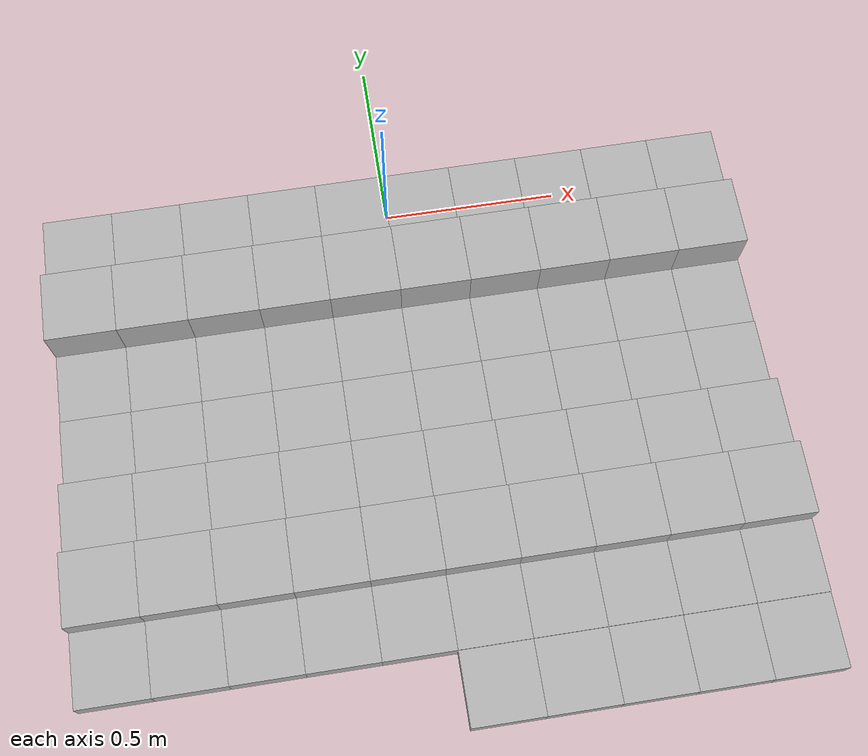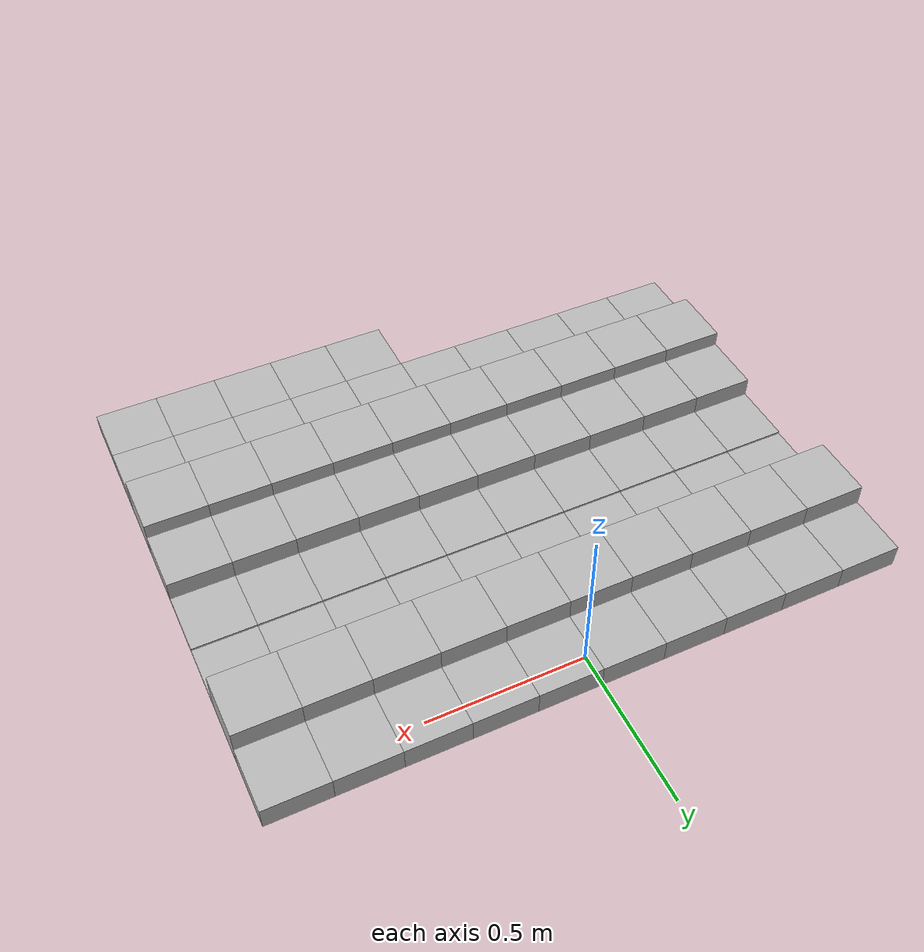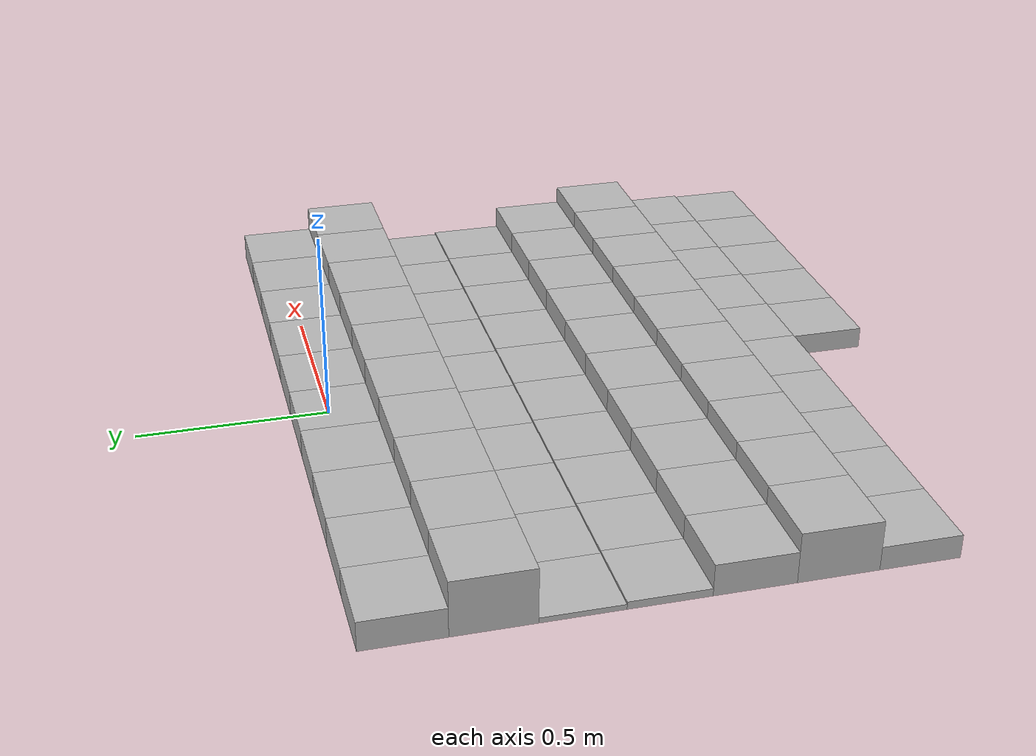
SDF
<sdf version="1.6">
 <model name="Terrain">
  <static>true</static>
  <link name="box_0_0">
   <pose>-0.9 0.0 0.0382685612016 0 0 0</pose>
   <inertial>
    <mass>1.0</mass>
    <inertia><ixx>0.0</ixx><ixy>0.0</ixy><ixz>0.0</ixz><iyy>0.0</iyy><iyz>0.0</iyz><izz>0.0</izz></inertia>
   </inertial>
   <collision name="collision"><geometry><box><size>0.2 0.2 0.0765371224031</size></box></geometry></collision>
   <visual name="visual"><geometry><box><size>0.2 0.2 0.0765371224031</size></box></geometry></visual>
  </link>
  <link name="box_0_1">
   <pose>-0.7 0.0 0.0382685612016 0 0 0</pose>
   <inertial>
    <mass>1.0</mass>
    <inertia><ixx>0.0</ixx><ixy>0.0</ixy><ixz>0.0</ixz><iyy>0.0</iyy><iyz>0.0</iyz><izz>0.0</izz></inertia>
   </inertial>
   <collision name="collision"><geometry><box><size>0.2 0.2 0.0765371224031</size></box></geometry></collision>
   <visual name="visual"><geometry><box><size>0.2 0.2 0.0765371224031</size></box></geometry></visual>
  </link>
  <link name="box_0_2">
   <pose>-0.5 0.0 0.0382685612016 0 0 0</pose>
   <inertial>
    <mass>1.0</mass>
    <inertia><ixx>0.0</ixx><ixy>0.0</ixy><ixz>0.0</ixz><iyy>0.0</iyy><iyz>0.0</iyz><izz>0.0</izz></inertia>
   </inertial>
   <collision name="collision"><geometry><box><size>0.2 0.2 0.0765371224031</size></box></geometry></collision>
   <visual name="visual"><geometry><box><size>0.2 0.2 0.0765371224031</size></box></geometry></visual>
  </link>
  <link name="box_0_3">
   <pose>-0.3 0.0 0.0382685612016 0 0 0</pose>
   <inertial>
    <mass>1.0</mass>
    <inertia><ixx>0.0</ixx><ixy>0.0</ixy><ixz>0.0</ixz><iyy>0.0</iyy><iyz>0.0</iyz><izz>0.0</izz></inertia>
   </inertial>
   <collision name="collision"><geometry><box><size>0.2 0.2 0.0765371224031</size></box></geometry></collision>
   <visual name="visual"><geometry><box><size>0.2 0.2 0.0765371224031</size></box></geometry></visual>
  </link>
  <link name="box_0_4">
   <pose>-0.1 0.0 0.0382685612016 0 0 0</pose>
   <inertial>
    <mass>1.0</mass>
    <inertia><ixx>0.0</ixx><ixy>0.0</ixy><ixz>0.0</ixz><iyy>0.0</iyy><iyz>0.0</iyz><izz>0.0</izz></inertia>
   </inertial>
   <collision name="collision"><geometry><box><size>0.2 0.2 0.0765371224031</size></box></geometry></collision>
   <visual name="visual"><geometry><box><size>0.2 0.2 0.0765371224031</size></box></geometry></visual>
  </link>
  <link name="box_0_5">
   <pose>0.1 0.0 0.0382685612016 0 0 0</pose>
   <inertial>
    <mass>1.0</mass>
    <inertia><ixx>0.0</ixx><ixy>0.0</ixy><ixz>0.0</ixz><iyy>0.0</iyy><iyz>0.0</iyz><izz>0.0</izz></inertia>
   </inertial>
   <collision name="collision"><geometry><box><size>0.2 0.2 0.0765371224031</size></box></geometry></collision>
   <visual name="visual"><geometry><box><size>0.2 0.2 0.0765371224031</size></box></geometry></visual>
  </link>
  <link name="box_0_6">
   <pose>0.3 0.0 0.0382685612016 0 0 0</pose>
   <inertial>
    <mass>1.0</mass>
    <inertia><ixx>0.0</ixx><ixy>0.0</ixy><ixz>0.0</ixz><iyy>0.0</iyy><iyz>0.0</iyz><izz>0.0</izz></inertia>
   </inertial>
   <collision name="collision"><geometry><box><size>0.2 0.2 0.0765371224031</size></box></geometry></collision>
   <visual name="visual"><geometry><box><size>0.2 0.2 0.0765371224031</size></box></geometry></visual>
  </link>
  <link name="box_0_7">
   <pose>0.5 0.0 0.0382685612016 0 0 0</pose>
   <inertial>
    <mass>1.0</mass>
    <inertia><ixx>0.0</ixx><ixy>0.0</ixy><ixz>0.0</ixz><iyy>0.0</iyy><iyz>0.0</iyz><izz>0.0</izz></inertia>
   </inertial>
   <collision name="collision"><geometry><box><size>0.2 0.2 0.0765371224031</size></box></geometry></collision>
   <visual name="visual"><geometry><box><size>0.2 0.2 0.0765371224031</size></box></geometry></visual>
  </link>
  <link name="box_0_8">
   <pose>0.7 0.0 0.0382685612016 0 0 0</pose>
   <inertial>
    <mass>1.0</mass>
    <inertia><ixx>0.0</ixx><ixy>0.0</ixy><ixz>0.0</ixz><iyy>0.0</iyy><iyz>0.0</iyz><izz>0.0</izz></inertia>
   </inertial>
   <collision name="collision"><geometry><box><size>0.2 0.2 0.0765371224031</size></box></geometry></collision>
   <visual name="visual"><geometry><box><size>0.2 0.2 0.0765371224031</size></box></geometry></visual>
  </link>
  <link name="box_0_9">
   <pose>0.9 0.0 0.0382685612016 0 0 0</pose>
   <inertial>
    <mass>1.0</mass>
    <inertia><ixx>0.0</ixx><ixy>0.0</ixy><ixz>0.0</ixz><iyy>0.0</iyy><iyz>0.0</iyz><izz>0.0</izz></inertia>
   </inertial>
   <collision name="collision"><geometry><box><size>0.2 0.2 0.0765371224031</size></box></geometry></collision>
   <visual name="visual"><geometry><box><size>0.2 0.2 0.0765371224031</size></box></geometry></visual>
  </link>
  <link name="box_1_0">
   <pose>-0.9 -0.2 0.0724811908394 0 0 0</pose>
   <inertial>
    <mass>1.0</mass>
    <inertia><ixx>0.0</ixx><ixy>0.0</ixy><ixz>0.0</ixz><iyy>0.0</iyy><iyz>0.0</iyz><izz>0.0</izz></inertia>
   </inertial>
   <collision name="collision"><geometry><box><size>0.2 0.2 0.144962381679</size></box></geometry></collision>
   <visual name="visual"><geometry><box><size>0.2 0.2 0.144962381679</size></box></geometry></visual>
  </link>
  <link name="box_1_1">
   <pose>-0.7 -0.2 0.0724811908394 0 0 0</pose>
   <inertial>
    <mass>1.0</mass>
    <inertia><ixx>0.0</ixx><ixy>0.0</ixy><ixz>0.0</ixz><iyy>0.0</iyy><iyz>0.0</iyz><izz>0.0</izz></inertia>
   </inertial>
   <collision name="collision"><geometry><box><size>0.2 0.2 0.144962381679</size></box></geometry></collision>
   <visual name="visual"><geometry><box><size>0.2 0.2 0.144962381679</size></box></geometry></visual>
  </link>
  <link name="box_1_2">
   <pose>-0.5 -0.2 0.0724811908394 0 0 0</pose>
   <inertial>
    <mass>1.0</mass>
    <inertia><ixx>0.0</ixx><ixy>0.0</ixy><ixz>0.0</ixz><iyy>0.0</iyy><iyz>0.0</iyz><izz>0.0</izz></inertia>
   </inertial>
   <collision name="collision"><geometry><box><size>0.2 0.2 0.144962381679</size></box></geometry></collision>
   <visual name="visual"><geometry><box><size>0.2 0.2 0.144962381679</size></box></geometry></visual>
  </link>
  <link name="box_1_3">
   <pose>-0.3 -0.2 0.0724811908394 0 0 0</pose>
   <inertial>
    <mass>1.0</mass>
    <inertia><ixx>0.0</ixx><ixy>0.0</ixy><ixz>0.0</ixz><iyy>0.0</iyy><iyz>0.0</iyz><izz>0.0</izz></inertia>
   </inertial>
   <collision name="collision"><geometry><box><size>0.2 0.2 0.144962381679</size></box></geometry></collision>
   <visual name="visual"><geometry><box><size>0.2 0.2 0.144962381679</size></box></geometry></visual>
  </link>
  <link name="box_1_4">
   <pose>-0.1 -0.2 0.0724811908394 0 0 0</pose>
   <inertial>
    <mass>1.0</mass>
    <inertia><ixx>0.0</ixx><ixy>0.0</ixy><ixz>0.0</ixz><iyy>0.0</iyy><iyz>0.0</iyz><izz>0.0</izz></inertia>
   </inertial>
   <collision name="collision"><geometry><box><size>0.2 0.2 0.144962381679</size></box></geometry></collision>
   <visual name="visual"><geometry><box><size>0.2 0.2 0.144962381679</size></box></geometry></visual>
  </link>
  <link name="box_1_5">
   <pose>0.1 -0.2 0.0724811908394 0 0 0</pose>
   <inertial>
    <mass>1.0</mass>
    <inertia><ixx>0.0</ixx><ixy>0.0</ixy><ixz>0.0</ixz><iyy>0.0</iyy><iyz>0.0</iyz><izz>0.0</izz></inertia>
   </inertial>
   <collision name="collision"><geometry><box><size>0.2 0.2 0.144962381679</size></box></geometry></collision>
   <visual name="visual"><geometry><box><size>0.2 0.2 0.144962381679</size></box></geometry></visual>
  </link>
  <link name="box_1_6">
   <pose>0.3 -0.2 0.0724811908394 0 0 0</pose>
   <inertial>
    <mass>1.0</mass>
    <inertia><ixx>0.0</ixx><ixy>0.0</ixy><ixz>0.0</ixz><iyy>0.0</iyy><iyz>0.0</iyz><izz>0.0</izz></inertia>
   </inertial>
   <collision name="collision"><geometry><box><size>0.2 0.2 0.144962381679</size></box></geometry></collision>
   <visual name="visual"><geometry><box><size>0.2 0.2 0.144962381679</size></box></geometry></visual>
  </link>
  <link name="box_1_7">
   <pose>0.5 -0.2 0.0724811908394 0 0 0</pose>
   <inertial>
    <mass>1.0</mass>
    <inertia><ixx>0.0</ixx><ixy>0.0</ixy><ixz>0.0</ixz><iyy>0.0</iyy><iyz>0.0</iyz><izz>0.0</izz></inertia>
   </inertial>
   <collision name="collision"><geometry><box><size>0.2 0.2 0.144962381679</size></box></geometry></collision>
   <visual name="visual"><geometry><box><size>0.2 0.2 0.144962381679</size></box></geometry></visual>
  </link>
  <link name="box_1_8">
   <pose>0.7 -0.2 0.0724811908394 0 0 0</pose>
   <inertial>
    <mass>1.0</mass>
    <inertia><ixx>0.0</ixx><ixy>0.0</ixy><ixz>0.0</ixz><iyy>0.0</iyy><iyz>0.0</iyz><izz>0.0</izz></inertia>
   </inertial>
   <collision name="collision"><geometry><box><size>0.2 0.2 0.144962381679</size></box></geometry></collision>
   <visual name="visual"><geometry><box><size>0.2 0.2 0.144962381679</size></box></geometry></visual>
  </link>
  <link name="box_1_9">
   <pose>0.9 -0.2 0.0724811908394 0 0 0</pose>
   <inertial>
    <mass>1.0</mass>
    <inertia><ixx>0.0</ixx><ixy>0.0</ixy><ixz>0.0</ixz><iyy>0.0</iyy><iyz>0.0</iyz><izz>0.0</izz></inertia>
   </inertial>
   <collision name="collision"><geometry><box><size>0.2 0.2 0.144962381679</size></box></geometry></collision>
   <visual name="visual"><geometry><box><size>0.2 0.2 0.144962381679</size></box></geometry></visual>
  </link>
  <link name="box_2_0">
   <pose>-0.9 -0.4 0.00683379115934 0 0 0</pose>
   <inertial>
    <mass>1.0</mass>
    <inertia><ixx>0.0</ixx><ixy>0.0</ixy><ixz>0.0</ixz><iyy>0.0</iyy><iyz>0.0</iyz><izz>0.0</izz></inertia>
   </inertial>
   <collision name="collision"><geometry><box><size>0.2 0.2 0.0136675823187</size></box></geometry></collision>
   <visual name="visual"><geometry><box><size>0.2 0.2 0.0136675823187</size></box></geometry></visual>
  </link>
  <link name="box_2_1">
   <pose>-0.7 -0.4 0.00683379115934 0 0 0</pose>
   <inertial>
    <mass>1.0</mass>
    <inertia><ixx>0.0</ixx><ixy>0.0</ixy><ixz>0.0</ixz><iyy>0.0</iyy><iyz>0.0</iyz><izz>0.0</izz></inertia>
   </inertial>
   <collision name="collision"><geometry><box><size>0.2 0.2 0.0136675823187</size></box></geometry></collision>
   <visual name="visual"><geometry><box><size>0.2 0.2 0.0136675823187</size></box></geometry></visual>
  </link>
  <link name="box_2_2">
   <pose>-0.5 -0.4 0.00683379115934 0 0 0</pose>
   <inertial>
    <mass>1.0</mass>
    <inertia><ixx>0.0</ixx><ixy>0.0</ixy><ixz>0.0</ixz><iyy>0.0</iyy><iyz>0.0</iyz><izz>0.0</izz></inertia>
   </inertial>
   <collision name="collision"><geometry><box><size>0.2 0.2 0.0136675823187</size></box></geometry></collision>
   <visual name="visual"><geometry><box><size>0.2 0.2 0.0136675823187</size></box></geometry></visual>
  </link>
  <link name="box_2_3">
   <pose>-0.3 -0.4 0.00683379115934 0 0 0</pose>
   <inertial>
    <mass>1.0</mass>
    <inertia><ixx>0.0</ixx><ixy>0.0</ixy><ixz>0.0</ixz><iyy>0.0</iyy><iyz>0.0</iyz><izz>0.0</izz></inertia>
   </inertial>
   <collision name="collision"><geometry><box><size>0.2 0.2 0.0136675823187</size></box></geometry></collision>
   <visual name="visual"><geometry><box><size>0.2 0.2 0.0136675823187</size></box></geometry></visual>
  </link>
  <link name="box_2_4">
   <pose>-0.1 -0.4 0.00683379115934 0 0 0</pose>
   <inertial>
    <mass>1.0</mass>
    <inertia><ixx>0.0</ixx><ixy>0.0</ixy><ixz>0.0</ixz><iyy>0.0</iyy><iyz>0.0</iyz><izz>0.0</izz></inertia>
   </inertial>
   <collision name="collision"><geometry><box><size>0.2 0.2 0.0136675823187</size></box></geometry></collision>
   <visual name="visual"><geometry><box><size>0.2 0.2 0.0136675823187</size></box></geometry></visual>
  </link>
  <link name="box_2_5">
   <pose>0.1 -0.4 0.00683379115934 0 0 0</pose>
   <inertial>
    <mass>1.0</mass>
    <inertia><ixx>0.0</ixx><ixy>0.0</ixy><ixz>0.0</ixz><iyy>0.0</iyy><iyz>0.0</iyz><izz>0.0</izz></inertia>
   </inertial>
   <collision name="collision"><geometry><box><size>0.2 0.2 0.0136675823187</size></box></geometry></collision>
   <visual name="visual"><geometry><box><size>0.2 0.2 0.0136675823187</size></box></geometry></visual>
  </link>
  <link name="box_2_6">
   <pose>0.3 -0.4 0.00683379115934 0 0 0</pose>
   <inertial>
    <mass>1.0</mass>
    <inertia><ixx>0.0</ixx><ixy>0.0</ixy><ixz>0.0</ixz><iyy>0.0</iyy><iyz>0.0</iyz><izz>0.0</izz></inertia>
   </inertial>
   <collision name="collision"><geometry><box><size>0.2 0.2 0.0136675823187</size></box></geometry></collision>
   <visual name="visual"><geometry><box><size>0.2 0.2 0.0136675823187</size></box></geometry></visual>
  </link>
  <link name="box_2_7">
   <pose>0.5 -0.4 0.00683379115934 0 0 0</pose>
   <inertial>
    <mass>1.0</mass>
    <inertia><ixx>0.0</ixx><ixy>0.0</ixy><ixz>0.0</ixz><iyy>0.0</iyy><iyz>0.0</iyz><izz>0.0</izz></inertia>
   </inertial>
   <collision name="collision"><geometry><box><size>0.2 0.2 0.0136675823187</size></box></geometry></collision>
   <visual name="visual"><geometry><box><size>0.2 0.2 0.0136675823187</size></box></geometry></visual>
  </link>
  <link name="box_2_8">
   <pose>0.7 -0.4 0.00683379115934 0 0 0</pose>
   <inertial>
    <mass>1.0</mass>
    <inertia><ixx>0.0</ixx><ixy>0.0</ixy><ixz>0.0</ixz><iyy>0.0</iyy><iyz>0.0</iyz><izz>0.0</izz></inertia>
   </inertial>
   <collision name="collision"><geometry><box><size>0.2 0.2 0.0136675823187</size></box></geometry></collision>
   <visual name="visual"><geometry><box><size>0.2 0.2 0.0136675823187</size></box></geometry></visual>
  </link>
  <link name="box_2_9">
   <pose>0.9 -0.4 0.00683379115934 0 0 0</pose>
   <inertial>
    <mass>1.0</mass>
    <inertia><ixx>0.0</ixx><ixy>0.0</ixy><ixz>0.0</ixz><iyy>0.0</iyy><iyz>0.0</iyz><izz>0.0</izz></inertia>
   </inertial>
   <collision name="collision"><geometry><box><size>0.2 0.2 0.0136675823187</size></box></geometry></collision>
   <visual name="visual"><geometry><box><size>0.2 0.2 0.0136675823187</size></box></geometry></visual>
  </link>
  <link name="box_3_0">
   <pose>-0.9 -0.6 0.00997603612215 0 0 0</pose>
   <inertial>
    <mass>1.0</mass>
    <inertia><ixx>0.0</ixx><ixy>0.0</ixy><ixz>0.0</ixz><iyy>0.0</iyy><iyz>0.0</iyz><izz>0.0</izz></inertia>
   </inertial>
   <collision name="collision"><geometry><box><size>0.2 0.2 0.0199520722443</size></box></geometry></collision>
   <visual name="visual"><geometry><box><size>0.2 0.2 0.0199520722443</size></box></geometry></visual>
  </link>
  <link name="box_3_1">
   <pose>-0.7 -0.6 0.00997603612215 0 0 0</pose>
   <inertial>
    <mass>1.0</mass>
    <inertia><ixx>0.0</ixx><ixy>0.0</ixy><ixz>0.0</ixz><iyy>0.0</iyy><iyz>0.0</iyz><izz>0.0</izz></inertia>
   </inertial>
   <collision name="collision"><geometry><box><size>0.2 0.2 0.0199520722443</size></box></geometry></collision>
   <visual name="visual"><geometry><box><size>0.2 0.2 0.0199520722443</size></box></geometry></visual>
  </link>
  <link name="box_3_2">
   <pose>-0.5 -0.6 0.00997603612215 0 0 0</pose>
   <inertial>
    <mass>1.0</mass>
    <inertia><ixx>0.0</ixx><ixy>0.0</ixy><ixz>0.0</ixz><iyy>0.0</iyy><iyz>0.0</iyz><izz>0.0</izz></inertia>
   </inertial>
   <collision name="collision"><geometry><box><size>0.2 0.2 0.0199520722443</size></box></geometry></collision>
   <visual name="visual"><geometry><box><size>0.2 0.2 0.0199520722443</size></box></geometry></visual>
  </link>
  <link name="box_3_3">
   <pose>-0.3 -0.6 0.00997603612215 0 0 0</pose>
   <inertial>
    <mass>1.0</mass>
    <inertia><ixx>0.0</ixx><ixy>0.0</ixy><ixz>0.0</ixz><iyy>0.0</iyy><iyz>0.0</iyz><izz>0.0</izz></inertia>
   </inertial>
   <collision name="collision"><geometry><box><size>0.2 0.2 0.0199520722443</size></box></geometry></collision>
   <visual name="visual"><geometry><box><size>0.2 0.2 0.0199520722443</size></box></geometry></visual>
  </link>
  <link name="box_3_4">
   <pose>-0.1 -0.6 0.00997603612215 0 0 0</pose>
   <inertial>
    <mass>1.0</mass>
    <inertia><ixx>0.0</ixx><ixy>0.0</ixy><ixz>0.0</ixz><iyy>0.0</iyy><iyz>0.0</iyz><izz>0.0</izz></inertia>
   </inertial>
   <collision name="collision"><geometry><box><size>0.2 0.2 0.0199520722443</size></box></geometry></collision>
   <visual name="visual"><geometry><box><size>0.2 0.2 0.0199520722443</size></box></geometry></visual>
  </link>
  <link name="box_3_5">
   <pose>0.1 -0.6 0.00997603612215 0 0 0</pose>
   <inertial>
    <mass>1.0</mass>
    <inertia><ixx>0.0</ixx><ixy>0.0</ixy><ixz>0.0</ixz><iyy>0.0</iyy><iyz>0.0</iyz><izz>0.0</izz></inertia>
   </inertial>
   <collision name="collision"><geometry><box><size>0.2 0.2 0.0199520722443</size></box></geometry></collision>
   <visual name="visual"><geometry><box><size>0.2 0.2 0.0199520722443</size></box></geometry></visual>
  </link>
  <link name="box_3_6">
   <pose>0.3 -0.6 0.00997603612215 0 0 0</pose>
   <inertial>
    <mass>1.0</mass>
    <inertia><ixx>0.0</ixx><ixy>0.0</ixy><ixz>0.0</ixz><iyy>0.0</iyy><iyz>0.0</iyz><izz>0.0</izz></inertia>
   </inertial>
   <collision name="collision"><geometry><box><size>0.2 0.2 0.0199520722443</size></box></geometry></collision>
   <visual name="visual"><geometry><box><size>0.2 0.2 0.0199520722443</size></box></geometry></visual>
  </link>
  <link name="box_3_7">
   <pose>0.5 -0.6 0.00997603612215 0 0 0</pose>
   <inertial>
    <mass>1.0</mass>
    <inertia><ixx>0.0</ixx><ixy>0.0</ixy><ixz>0.0</ixz><iyy>0.0</iyy><iyz>0.0</iyz><izz>0.0</izz></inertia>
   </inertial>
   <collision name="collision"><geometry><box><size>0.2 0.2 0.0199520722443</size></box></geometry></collision>
   <visual name="visual"><geometry><box><size>0.2 0.2 0.0199520722443</size></box></geometry></visual>
  </link>
  <link name="box_3_8">
   <pose>0.7 -0.6 0.00997603612215 0 0 0</pose>
   <inertial>
    <mass>1.0</mass>
    <inertia><ixx>0.0</ixx><ixy>0.0</ixy><ixz>0.0</ixz><iyy>0.0</iyy><iyz>0.0</iyz><izz>0.0</izz></inertia>
   </inertial>
   <collision name="collision"><geometry><box><size>0.2 0.2 0.0199520722443</size></box></geometry></collision>
   <visual name="visual"><geometry><box><size>0.2 0.2 0.0199520722443</size></box></geometry></visual>
  </link>
  <link name="box_3_9">
   <pose>0.9 -0.6 0.00997603612215 0 0 0</pose>
   <inertial>
    <mass>1.0</mass>
    <inertia><ixx>0.0</ixx><ixy>0.0</ixy><ixz>0.0</ixz><iyy>0.0</iyy><iyz>0.0</iyz><izz>0.0</izz></inertia>
   </inertial>
   <collision name="collision"><geometry><box><size>0.2 0.2 0.0199520722443</size></box></geometry></collision>
   <visual name="visual"><geometry><box><size>0.2 0.2 0.0199520722443</size></box></geometry></visual>
  </link>
  <link name="box_4_0">
   <pose>-0.9 -0.8 0.041525489958 0 0 0</pose>
   <inertial>
    <mass>1.0</mass>
    <inertia><ixx>0.0</ixx><ixy>0.0</ixy><ixz>0.0</ixz><iyy>0.0</iyy><iyz>0.0</iyz><izz>0.0</izz></inertia>
   </inertial>
   <collision name="collision"><geometry><box><size>0.2 0.2 0.0830509799161</size></box></geometry></collision>
   <visual name="visual"><geometry><box><size>0.2 0.2 0.0830509799161</size></box></geometry></visual>
  </link>
  <link name="box_4_1">
   <pose>-0.7 -0.8 0.041525489958 0 0 0</pose>
   <inertial>
    <mass>1.0</mass>
    <inertia><ixx>0.0</ixx><ixy>0.0</ixy><ixz>0.0</ixz><iyy>0.0</iyy><iyz>0.0</iyz><izz>0.0</izz></inertia>
   </inertial>
   <collision name="collision"><geometry><box><size>0.2 0.2 0.0830509799161</size></box></geometry></collision>
   <visual name="visual"><geometry><box><size>0.2 0.2 0.0830509799161</size></box></geometry></visual>
  </link>
  <link name="box_4_2">
   <pose>-0.5 -0.8 0.041525489958 0 0 0</pose>
   <inertial>
    <mass>1.0</mass>
    <inertia><ixx>0.0</ixx><ixy>0.0</ixy><ixz>0.0</ixz><iyy>0.0</iyy><iyz>0.0</iyz><izz>0.0</izz></inertia>
   </inertial>
   <collision name="collision"><geometry><box><size>0.2 0.2 0.0830509799161</size></box></geometry></collision>
   <visual name="visual"><geometry><box><size>0.2 0.2 0.0830509799161</size></box></geometry></visual>
  </link>
  <link name="box_4_3">
   <pose>-0.3 -0.8 0.041525489958 0 0 0</pose>
   <inertial>
    <mass>1.0</mass>
    <inertia><ixx>0.0</ixx><ixy>0.0</ixy><ixz>0.0</ixz><iyy>0.0</iyy><iyz>0.0</iyz><izz>0.0</izz></inertia>
   </inertial>
   <collision name="collision"><geometry><box><size>0.2 0.2 0.0830509799161</size></box></geometry></collision>
   <visual name="visual"><geometry><box><size>0.2 0.2 0.0830509799161</size></box></geometry></visual>
  </link>
  <link name="box_4_4">
   <pose>-0.1 -0.8 0.041525489958 0 0 0</pose>
   <inertial>
    <mass>1.0</mass>
    <inertia><ixx>0.0</ixx><ixy>0.0</ixy><ixz>0.0</ixz><iyy>0.0</iyy><iyz>0.0</iyz><izz>0.0</izz></inertia>
   </inertial>
   <collision name="collision"><geometry><box><size>0.2 0.2 0.0830509799161</size></box></geometry></collision>
   <visual name="visual"><geometry><box><size>0.2 0.2 0.0830509799161</size></box></geometry></visual>
  </link>
  <link name="box_4_5">
   <pose>0.1 -0.8 0.041525489958 0 0 0</pose>
   <inertial>
    <mass>1.0</mass>
    <inertia><ixx>0.0</ixx><ixy>0.0</ixy><ixz>0.0</ixz><iyy>0.0</iyy><iyz>0.0</iyz><izz>0.0</izz></inertia>
   </inertial>
   <collision name="collision"><geometry><box><size>0.2 0.2 0.0830509799161</size></box></geometry></collision>
   <visual name="visual"><geometry><box><size>0.2 0.2 0.0830509799161</size></box></geometry></visual>
  </link>
  <link name="box_4_6">
   <pose>0.3 -0.8 0.041525489958 0 0 0</pose>
   <inertial>
    <mass>1.0</mass>
    <inertia><ixx>0.0</ixx><ixy>0.0</ixy><ixz>0.0</ixz><iyy>0.0</iyy><iyz>0.0</iyz><izz>0.0</izz></inertia>
   </inertial>
   <collision name="collision"><geometry><box><size>0.2 0.2 0.0830509799161</size></box></geometry></collision>
   <visual name="visual"><geometry><box><size>0.2 0.2 0.0830509799161</size></box></geometry></visual>
  </link>
  <link name="box_4_7">
   <pose>0.5 -0.8 0.041525489958 0 0 0</pose>
   <inertial>
    <mass>1.0</mass>
    <inertia><ixx>0.0</ixx><ixy>0.0</ixy><ixz>0.0</ixz><iyy>0.0</iyy><iyz>0.0</iyz><izz>0.0</izz></inertia>
   </inertial>
   <collision name="collision"><geometry><box><size>0.2 0.2 0.0830509799161</size></box></geometry></collision>
   <visual name="visual"><geometry><box><size>0.2 0.2 0.0830509799161</size></box></geometry></visual>
  </link>
  <link name="box_4_8">
   <pose>0.7 -0.8 0.041525489958 0 0 0</pose>
   <inertial>
    <mass>1.0</mass>
    <inertia><ixx>0.0</ixx><ixy>0.0</ixy><ixz>0.0</ixz><iyy>0.0</iyy><iyz>0.0</iyz><izz>0.0</izz></inertia>
   </inertial>
   <collision name="collision"><geometry><box><size>0.2 0.2 0.0830509799161</size></box></geometry></collision>
   <visual name="visual"><geometry><box><size>0.2 0.2 0.0830509799161</size></box></geometry></visual>
  </link>
  <link name="box_4_9">
   <pose>0.9 -0.8 0.041525489958 0 0 0</pose>
   <inertial>
    <mass>1.0</mass>
    <inertia><ixx>0.0</ixx><ixy>0.0</ixy><ixz>0.0</ixz><iyy>0.0</iyy><iyz>0.0</iyz><izz>0.0</izz></inertia>
   </inertial>
   <collision name="collision"><geometry><box><size>0.2 0.2 0.0830509799161</size></box></geometry></collision>
   <visual name="visual"><geometry><box><size>0.2 0.2 0.0830509799161</size></box></geometry></visual>
  </link>
  <link name="box_5_0">
   <pose>-0.9 -1.0 0.0661127829623 0 0 0</pose>
   <inertial>
    <mass>1.0</mass>
    <inertia><ixx>0.0</ixx><ixy>0.0</ixy><ixz>0.0</ixz><iyy>0.0</iyy><iyz>0.0</iyz><izz>0.0</izz></inertia>
   </inertial>
   <collision name="collision"><geometry><box><size>0.2 0.2 0.132225565925</size></box></geometry></collision>
   <visual name="visual"><geometry><box><size>0.2 0.2 0.132225565925</size></box></geometry></visual>
  </link>
  <link name="box_5_1">
   <pose>-0.7 -1.0 0.0661127829623 0 0 0</pose>
   <inertial>
    <mass>1.0</mass>
    <inertia><ixx>0.0</ixx><ixy>0.0</ixy><ixz>0.0</ixz><iyy>0.0</iyy><iyz>0.0</iyz><izz>0.0</izz></inertia>
   </inertial>
   <collision name="collision"><geometry><box><size>0.2 0.2 0.132225565925</size></box></geometry></collision>
   <visual name="visual"><geometry><box><size>0.2 0.2 0.132225565925</size></box></geometry></visual>
  </link>
  <link name="box_5_2">
   <pose>-0.5 -1.0 0.0661127829623 0 0 0</pose>
   <inertial>
    <mass>1.0</mass>
    <inertia><ixx>0.0</ixx><ixy>0.0</ixy><ixz>0.0</ixz><iyy>0.0</iyy><iyz>0.0</iyz><izz>0.0</izz></inertia>
   </inertial>
   <collision name="collision"><geometry><box><size>0.2 0.2 0.132225565925</size></box></geometry></collision>
   <visual name="visual"><geometry><box><size>0.2 0.2 0.132225565925</size></box></geometry></visual>
  </link>
  <link name="box_5_3">
   <pose>-0.3 -1.0 0.0661127829623 0 0 0</pose>
   <inertial>
    <mass>1.0</mass>
    <inertia><ixx>0.0</ixx><ixy>0.0</ixy><ixz>0.0</ixz><iyy>0.0</iyy><iyz>0.0</iyz><izz>0.0</izz></inertia>
   </inertial>
   <collision name="collision"><geometry><box><size>0.2 0.2 0.132225565925</size></box></geometry></collision>
   <visual name="visual"><geometry><box><size>0.2 0.2 0.132225565925</size></box></geometry></visual>
  </link>
  <link name="box_5_4">
   <pose>-0.1 -1.0 0.0661127829623 0 0 0</pose>
   <inertial>
    <mass>1.0</mass>
    <inertia><ixx>0.0</ixx><ixy>0.0</ixy><ixz>0.0</ixz><iyy>0.0</iyy><iyz>0.0</iyz><izz>0.0</izz></inertia>
   </inertial>
   <collision name="collision"><geometry><box><size>0.2 0.2 0.132225565925</size></box></geometry></collision>
   <visual name="visual"><geometry><box><size>0.2 0.2 0.132225565925</size></box></geometry></visual>
  </link>
  <link name="box_5_5">
   <pose>0.1 -1.0 0.0661127829623 0 0 0</pose>
   <inertial>
    <mass>1.0</mass>
    <inertia><ixx>0.0</ixx><ixy>0.0</ixy><ixz>0.0</ixz><iyy>0.0</iyy><iyz>0.0</iyz><izz>0.0</izz></inertia>
   </inertial>
   <collision name="collision"><geometry><box><size>0.2 0.2 0.132225565925</size></box></geometry></collision>
   <visual name="visual"><geometry><box><size>0.2 0.2 0.132225565925</size></box></geometry></visual>
  </link>
  <link name="box_5_6">
   <pose>0.3 -1.0 0.0661127829623 0 0 0</pose>
   <inertial>
    <mass>1.0</mass>
    <inertia><ixx>0.0</ixx><ixy>0.0</ixy><ixz>0.0</ixz><iyy>0.0</iyy><iyz>0.0</iyz><izz>0.0</izz></inertia>
   </inertial>
   <collision name="collision"><geometry><box><size>0.2 0.2 0.132225565925</size></box></geometry></collision>
   <visual name="visual"><geometry><box><size>0.2 0.2 0.132225565925</size></box></geometry></visual>
  </link>
  <link name="box_5_7">
   <pose>0.5 -1.0 0.0661127829623 0 0 0</pose>
   <inertial>
    <mass>1.0</mass>
    <inertia><ixx>0.0</ixx><ixy>0.0</ixy><ixz>0.0</ixz><iyy>0.0</iyy><iyz>0.0</iyz><izz>0.0</izz></inertia>
   </inertial>
   <collision name="collision"><geometry><box><size>0.2 0.2 0.132225565925</size></box></geometry></collision>
   <visual name="visual"><geometry><box><size>0.2 0.2 0.132225565925</size></box></geometry></visual>
  </link>
  <link name="box_5_8">
   <pose>0.7 -1.0 0.0661127829623 0 0 0</pose>
   <inertial>
    <mass>1.0</mass>
    <inertia><ixx>0.0</ixx><ixy>0.0</ixy><ixz>0.0</ixz><iyy>0.0</iyy><iyz>0.0</iyz><izz>0.0</izz></inertia>
   </inertial>
   <collision name="collision"><geometry><box><size>0.2 0.2 0.132225565925</size></box></geometry></collision>
   <visual name="visual"><geometry><box><size>0.2 0.2 0.132225565925</size></box></geometry></visual>
  </link>
  <link name="box_5_9">
   <pose>0.9 -1.0 0.0661127829623 0 0 0</pose>
   <inertial>
    <mass>1.0</mass>
    <inertia><ixx>0.0</ixx><ixy>0.0</ixy><ixz>0.0</ixz><iyy>0.0</iyy><iyz>0.0</iyz><izz>0.0</izz></inertia>
   </inertial>
   <collision name="collision"><geometry><box><size>0.2 0.2 0.132225565925</size></box></geometry></collision>
   <visual name="visual"><geometry><box><size>0.2 0.2 0.132225565925</size></box></geometry></visual>
  </link>
  <link name="box_6_0">
   <pose>-0.9 -1.2 0.0309736617064 0 0 0</pose>
   <inertial>
    <mass>1.0</mass>
    <inertia><ixx>0.0</ixx><ixy>0.0</ixy><ixz>0.0</ixz><iyy>0.0</iyy><iyz>0.0</iyz><izz>0.0</izz></inertia>
   </inertial>
   <collision name="collision"><geometry><box><size>0.2 0.2 0.0619473234127</size></box></geometry></collision>
   <visual name="visual"><geometry><box><size>0.2 0.2 0.0619473234127</size></box></geometry></visual>
  </link>
  <link name="box_6_1">
   <pose>-0.7 -1.2 0.0309736617064 0 0 0</pose>
   <inertial>
    <mass>1.0</mass>
    <inertia><ixx>0.0</ixx><ixy>0.0</ixy><ixz>0.0</ixz><iyy>0.0</iyy><iyz>0.0</iyz><izz>0.0</izz></inertia>
   </inertial>
   <collision name="collision"><geometry><box><size>0.2 0.2 0.0619473234127</size></box></geometry></collision>
   <visual name="visual"><geometry><box><size>0.2 0.2 0.0619473234127</size></box></geometry></visual>
  </link>
  <link name="box_6_2">
   <pose>-0.5 -1.2 0.0309736617064 0 0 0</pose>
   <inertial>
    <mass>1.0</mass>
    <inertia><ixx>0.0</ixx><ixy>0.0</ixy><ixz>0.0</ixz><iyy>0.0</iyy><iyz>0.0</iyz><izz>0.0</izz></inertia>
   </inertial>
   <collision name="collision"><geometry><box><size>0.2 0.2 0.0619473234127</size></box></geometry></collision>
   <visual name="visual"><geometry><box><size>0.2 0.2 0.0619473234127</size></box></geometry></visual>
  </link>
  <link name="box_6_3">
   <pose>-0.3 -1.2 0.0309736617064 0 0 0</pose>
   <inertial>
    <mass>1.0</mass>
    <inertia><ixx>0.0</ixx><ixy>0.0</ixy><ixz>0.0</ixz><iyy>0.0</iyy><iyz>0.0</iyz><izz>0.0</izz></inertia>
   </inertial>
   <collision name="collision"><geometry><box><size>0.2 0.2 0.0619473234127</size></box></geometry></collision>
   <visual name="visual"><geometry><box><size>0.2 0.2 0.0619473234127</size></box></geometry></visual>
  </link>
  <link name="box_6_4">
   <pose>-0.1 -1.2 0.0309736617064 0 0 0</pose>
   <inertial>
    <mass>1.0</mass>
    <inertia><ixx>0.0</ixx><ixy>0.0</ixy><ixz>0.0</ixz><iyy>0.0</iyy><iyz>0.0</iyz><izz>0.0</izz></inertia>
   </inertial>
   <collision name="collision"><geometry><box><size>0.2 0.2 0.0619473234127</size></box></geometry></collision>
   <visual name="visual"><geometry><box><size>0.2 0.2 0.0619473234127</size></box></geometry></visual>
  </link>
  <link name="box_6_5">
   <pose>0.1 -1.2 0.0309736617064 0 0 0</pose>
   <inertial>
    <mass>1.0</mass>
    <inertia><ixx>0.0</ixx><ixy>0.0</ixy><ixz>0.0</ixz><iyy>0.0</iyy><iyz>0.0</iyz><izz>0.0</izz></inertia>
   </inertial>
   <collision name="collision"><geometry><box><size>0.2 0.2 0.0619473234127</size></box></geometry></collision>
   <visual name="visual"><geometry><box><size>0.2 0.2 0.0619473234127</size></box></geometry></visual>
  </link>
  <link name="box_6_6">
   <pose>0.3 -1.2 0.0309736617064 0 0 0</pose>
   <inertial>
    <mass>1.0</mass>
    <inertia><ixx>0.0</ixx><ixy>0.0</ixy><ixz>0.0</ixz><iyy>0.0</iyy><iyz>0.0</iyz><izz>0.0</izz></inertia>
   </inertial>
   <collision name="collision"><geometry><box><size>0.2 0.2 0.0619473234127</size></box></geometry></collision>
   <visual name="visual"><geometry><box><size>0.2 0.2 0.0619473234127</size></box></geometry></visual>
  </link>
  <link name="box_6_7">
   <pose>0.5 -1.2 0.0309736617064 0 0 0</pose>
   <inertial>
    <mass>1.0</mass>
    <inertia><ixx>0.0</ixx><ixy>0.0</ixy><ixz>0.0</ixz><iyy>0.0</iyy><iyz>0.0</iyz><izz>0.0</izz></inertia>
   </inertial>
   <collision name="collision"><geometry><box><size>0.2 0.2 0.0619473234127</size></box></geometry></collision>
   <visual name="visual"><geometry><box><size>0.2 0.2 0.0619473234127</size></box></geometry></visual>
  </link>
  <link name="box_6_8">
   <pose>0.7 -1.2 0.0309736617064 0 0 0</pose>
   <inertial>
    <mass>1.0</mass>
    <inertia><ixx>0.0</ixx><ixy>0.0</ixy><ixz>0.0</ixz><iyy>0.0</iyy><iyz>0.0</iyz><izz>0.0</izz></inertia>
   </inertial>
   <collision name="collision"><geometry><box><size>0.2 0.2 0.0619473234127</size></box></geometry></collision>
   <visual name="visual"><geometry><box><size>0.2 0.2 0.0619473234127</size></box></geometry></visual>
  </link>
  <link name="box_6_9">
   <pose>0.9 -1.2 0.0309736617064 0 0 0</pose>
   <inertial>
    <mass>1.0</mass>
    <inertia><ixx>0.0</ixx><ixy>0.0</ixy><ixz>0.0</ixz><iyy>0.0</iyy><iyz>0.0</iyz><izz>0.0</izz></inertia>
   </inertial>
   <collision name="collision"><geometry><box><size>0.2 0.2 0.0619473234127</size></box></geometry></collision>
   <visual name="visual"><geometry><box><size>0.2 0.2 0.0619473234127</size></box></geometry></visual>
  </link>
  <link name="box_7_5">
   <pose>0.1 -1.4 0.0288530156352 0 0 0</pose>
   <inertial>
    <mass>1.0</mass>
    <inertia><ixx>0.0</ixx><ixy>0.0</ixy><ixz>0.0</ixz><iyy>0.0</iyy><iyz>0.0</iyz><izz>0.0</izz></inertia>
   </inertial>
   <collision name="collision"><geometry><box><size>0.2 0.2 0.0577060312703</size></box></geometry></collision>
   <visual name="visual"><geometry><box><size>0.2 0.2 0.0577060312703</size></box></geometry></visual>
  </link>
  <link name="box_7_6">
   <pose>0.3 -1.4 0.0288530156352 0 0 0</pose>
   <inertial>
    <mass>1.0</mass>
    <inertia><ixx>0.0</ixx><ixy>0.0</ixy><ixz>0.0</ixz><iyy>0.0</iyy><iyz>0.0</iyz><izz>0.0</izz></inertia>
   </inertial>
   <collision name="collision"><geometry><box><size>0.2 0.2 0.0577060312703</size></box></geometry></collision>
   <visual name="visual"><geometry><box><size>0.2 0.2 0.0577060312703</size></box></geometry></visual>
  </link>
  <link name="box_7_7">
   <pose>0.5 -1.4 0.0288530156352 0 0 0</pose>
   <inertial>
    <mass>1.0</mass>
    <inertia><ixx>0.0</ixx><ixy>0.0</ixy><ixz>0.0</ixz><iyy>0.0</iyy><iyz>0.0</iyz><izz>0.0</izz></inertia>
   </inertial>
   <collision name="collision"><geometry><box><size>0.2 0.2 0.0577060312703</size></box></geometry></collision>
   <visual name="visual"><geometry><box><size>0.2 0.2 0.0577060312703</size></box></geometry></visual>
  </link>
  <link name="box_7_8">
   <pose>0.7 -1.4 0.0288530156352 0 0 0</pose>
   <inertial>
    <mass>1.0</mass>
    <inertia><ixx>0.0</ixx><ixy>0.0</ixy><ixz>0.0</ixz><iyy>0.0</iyy><iyz>0.0</iyz><izz>0.0</izz></inertia>
   </inertial>
   <collision name="collision"><geometry><box><size>0.2 0.2 0.0577060312703</size></box></geometry></collision>
   <visual name="visual"><geometry><box><size>0.2 0.2 0.0577060312703</size></box></geometry></visual>
  </link>
  <link name="box_7_9">
   <pose>0.9 -1.4 0.0288530156352 0 0 0</pose>
   <inertial>
    <mass>1.0</mass>
    <inertia><ixx>0.0</ixx><ixy>0.0</ixy><ixz>0.0</ixz><iyy>0.0</iyy><iyz>0.0</iyz><izz>0.0</izz></inertia>
   </inertial>
   <collision name="collision"><geometry><box><size>0.2 0.2 0.0577060312703</size></box></geometry></collision>
   <visual name="visual"><geometry><box><size>0.2 0.2 0.0577060312703</size></box></geometry></visual>
  </link>
 </model>
</sdf>
